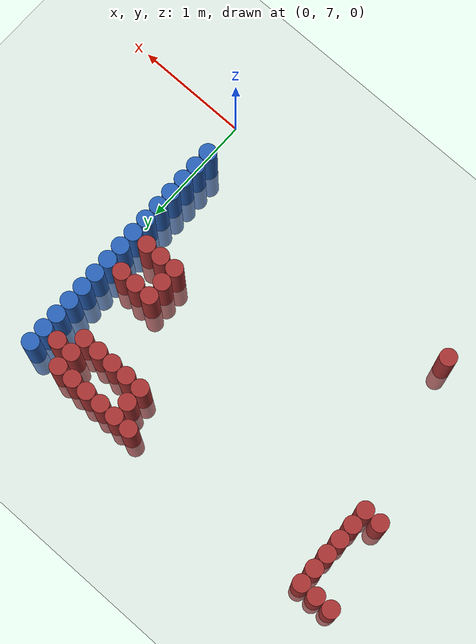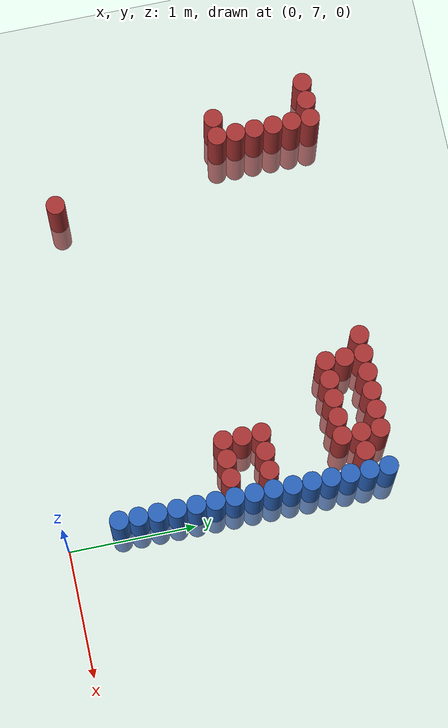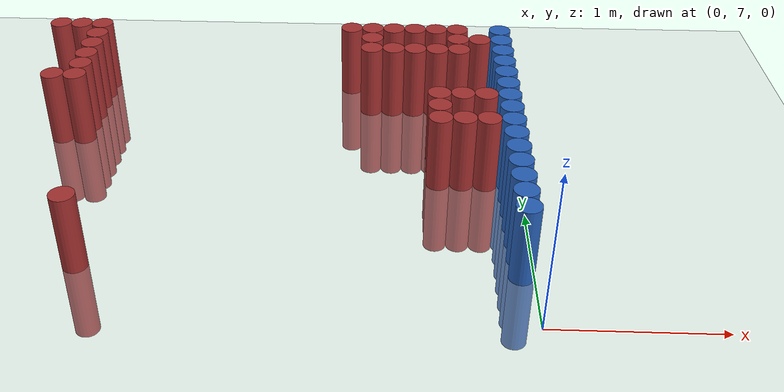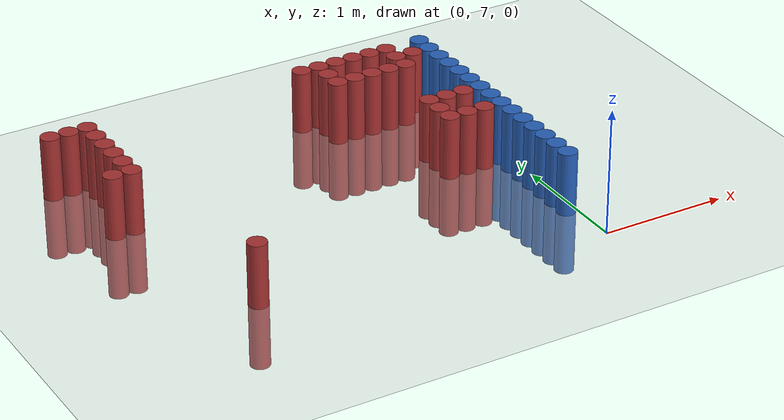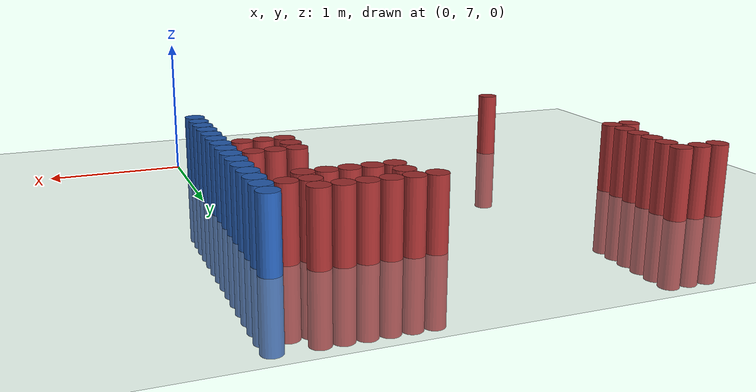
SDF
<sdf version="1.6">
 <world name="default">
  <model name="ground_plane">
   <static>1</static>
   <link name="link">
    <collision name="collision">
     <geometry><plane><normal>0 0 1</normal><size>100 100</size></plane></geometry>
     <surface><friction><ode><mu>100</mu><mu2>50</mu2></ode></friction></surface>
    </collision>
    <visual name="visual">
     <cast_shadows>0</cast_shadows>
     <geometry><plane><normal>0 0 1</normal><size>100 100</size></plane></geometry>
     <material>
      <script><uri>file://media/materials/scripts/gazebo.material</uri><name>Gazebo/Grey</name></script>
     </material>
    </visual>
   </link>
  </model>
  <model name="unit_cylinder_161">
   <static>1</static>
   <pose>-3.225000 9.525000 0.000000 0.000000 0.000000 0.000000</pose>
   <link name="link">
    <inertial>
     <mass>1</mass>
     <inertia><ixx>0.145833</ixx><ixy>0</ixy><ixz>0</ixz><iyy>0.145833</iyy><iyz>0</iyz><izz>0.125</izz></inertia>
    </inertial>
    <collision name="collision">
     <geometry><cylinder><radius>0.075000</radius><length>1</length></cylinder></geometry>
    </collision>
    <visual name="visual">
     <geometry><cylinder><radius>0.075000</radius><length>1</length></cylinder></geometry>
     <material>
      <ambient>0.648000 0.192000 0.192000 1</ambient>
      <diffuse>0.648000 0.192000 0.192000 1</diffuse>
     </material>
     <material>
      <script><name>Gazebo/Grey</name><uri>file://media/materials/scripts/gazebo.material</uri></script>
     </material>
    </visual>
   </link>
  </model>
  <model name="unit_cylinder_164">
   <static>1</static>
   <pose>-3.075000 8.775000 0.000000 0.000000 0.000000 0.000000</pose>
   <link name="link">
    <inertial>
     <mass>1</mass>
     <inertia><ixx>0.145833</ixx><ixy>0</ixy><ixz>0</ixz><iyy>0.145833</iyy><iyz>0</iyz><izz>0.125</izz></inertia>
    </inertial>
    <collision name="collision">
     <geometry><cylinder><radius>0.075000</radius><length>1</length></cylinder></geometry>
    </collision>
    <visual name="visual">
     <geometry><cylinder><radius>0.075000</radius><length>1</length></cylinder></geometry>
     <material>
      <ambient>0.648000 0.192000 0.192000 1</ambient>
      <diffuse>0.648000 0.192000 0.192000 1</diffuse>
     </material>
     <material>
      <script><name>Gazebo/Grey</name><uri>file://media/materials/scripts/gazebo.material</uri></script>
     </material>
    </visual>
   </link>
  </model>
  <model name="unit_cylinder_165">
   <static>1</static>
   <pose>-3.075000 9.525000 0.000000 0.000000 0.000000 0.000000</pose>
   <link name="link">
    <inertial>
     <mass>1</mass>
     <inertia><ixx>0.145833</ixx><ixy>0</ixy><ixz>0</ixz><iyy>0.145833</iyy><iyz>0</iyz><izz>0.125</izz></inertia>
    </inertial>
    <collision name="collision">
     <geometry><cylinder><radius>0.075000</radius><length>1</length></cylinder></geometry>
    </collision>
    <visual name="visual">
     <geometry><cylinder><radius>0.075000</radius><length>1</length></cylinder></geometry>
     <material>
      <ambient>0.648000 0.192000 0.192000 1</ambient>
      <diffuse>0.648000 0.192000 0.192000 1</diffuse>
     </material>
     <material>
      <script><name>Gazebo/Grey</name><uri>file://media/materials/scripts/gazebo.material</uri></script>
     </material>
    </visual>
   </link>
  </model>
  <model name="unit_cylinder_179">
   <static>1</static>
   <pose>-2.925000 8.775000 0.000000 0.000000 0.000000 0.000000</pose>
   <link name="link">
    <inertial>
     <mass>1</mass>
     <inertia><ixx>0.145833</ixx><ixy>0</ixy><ixz>0</ixz><iyy>0.145833</iyy><iyz>0</iyz><izz>0.125</izz></inertia>
    </inertial>
    <collision name="collision">
     <geometry><cylinder><radius>0.075000</radius><length>1</length></cylinder></geometry>
    </collision>
    <visual name="visual">
     <geometry><cylinder><radius>0.075000</radius><length>1</length></cylinder></geometry>
     <material>
      <ambient>0.648000 0.192000 0.192000 1</ambient>
      <diffuse>0.648000 0.192000 0.192000 1</diffuse>
     </material>
     <material>
      <script><name>Gazebo/Grey</name><uri>file://media/materials/scripts/gazebo.material</uri></script>
     </material>
    </visual>
   </link>
  </model>
  <model name="unit_cylinder_180">
   <static>1</static>
   <pose>-2.925000 8.925000 0.000000 0.000000 0.000000 0.000000</pose>
   <link name="link">
    <inertial>
     <mass>1</mass>
     <inertia><ixx>0.145833</ixx><ixy>0</ixy><ixz>0</ixz><iyy>0.145833</iyy><iyz>0</iyz><izz>0.125</izz></inertia>
    </inertial>
    <collision name="collision">
     <geometry><cylinder><radius>0.075000</radius><length>1</length></cylinder></geometry>
    </collision>
    <visual name="visual">
     <geometry><cylinder><radius>0.075000</radius><length>1</length></cylinder></geometry>
     <material>
      <ambient>0.648000 0.192000 0.192000 1</ambient>
      <diffuse>0.648000 0.192000 0.192000 1</diffuse>
     </material>
     <material>
      <script><name>Gazebo/Grey</name><uri>file://media/materials/scripts/gazebo.material</uri></script>
     </material>
    </visual>
   </link>
  </model>
  <model name="unit_cylinder_181">
   <static>1</static>
   <pose>-2.925000 9.075000 0.000000 0.000000 0.000000 0.000000</pose>
   <link name="link">
    <inertial>
     <mass>1</mass>
     <inertia><ixx>0.145833</ixx><ixy>0</ixy><ixz>0</ixz><iyy>0.145833</iyy><iyz>0</iyz><izz>0.125</izz></inertia>
    </inertial>
    <collision name="collision">
     <geometry><cylinder><radius>0.075000</radius><length>1</length></cylinder></geometry>
    </collision>
    <visual name="visual">
     <geometry><cylinder><radius>0.075000</radius><length>1</length></cylinder></geometry>
     <material>
      <ambient>0.648000 0.192000 0.192000 1</ambient>
      <diffuse>0.648000 0.192000 0.192000 1</diffuse>
     </material>
     <material>
      <script><name>Gazebo/Grey</name><uri>file://media/materials/scripts/gazebo.material</uri></script>
     </material>
    </visual>
   </link>
  </model>
  <model name="unit_cylinder_182">
   <static>1</static>
   <pose>-2.925000 9.225000 0.000000 0.000000 0.000000 0.000000</pose>
   <link name="link">
    <inertial>
     <mass>1</mass>
     <inertia><ixx>0.145833</ixx><ixy>0</ixy><ixz>0</ixz><iyy>0.145833</iyy><iyz>0</iyz><izz>0.125</izz></inertia>
    </inertial>
    <collision name="collision">
     <geometry><cylinder><radius>0.075000</radius><length>1</length></cylinder></geometry>
    </collision>
    <visual name="visual">
     <geometry><cylinder><radius>0.075000</radius><length>1</length></cylinder></geometry>
     <material>
      <ambient>0.648000 0.192000 0.192000 1</ambient>
      <diffuse>0.648000 0.192000 0.192000 1</diffuse>
     </material>
     <material>
      <script><name>Gazebo/Grey</name><uri>file://media/materials/scripts/gazebo.material</uri></script>
     </material>
    </visual>
   </link>
  </model>
  <model name="unit_cylinder_183">
   <static>1</static>
   <pose>-2.925000 9.375000 0.000000 0.000000 0.000000 0.000000</pose>
   <link name="link">
    <inertial>
     <mass>1</mass>
     <inertia><ixx>0.145833</ixx><ixy>0</ixy><ixz>0</ixz><iyy>0.145833</iyy><iyz>0</iyz><izz>0.125</izz></inertia>
    </inertial>
    <collision name="collision">
     <geometry><cylinder><radius>0.075000</radius><length>1</length></cylinder></geometry>
    </collision>
    <visual name="visual">
     <geometry><cylinder><radius>0.075000</radius><length>1</length></cylinder></geometry>
     <material>
      <ambient>0.648000 0.192000 0.192000 1</ambient>
      <diffuse>0.648000 0.192000 0.192000 1</diffuse>
     </material>
     <material>
      <script><name>Gazebo/Grey</name><uri>file://media/materials/scripts/gazebo.material</uri></script>
     </material>
    </visual>
   </link>
  </model>
  <model name="unit_cylinder_184">
   <static>1</static>
   <pose>-2.925000 9.525000 0.000000 0.000000 0.000000 0.000000</pose>
   <link name="link">
    <inertial>
     <mass>1</mass>
     <inertia><ixx>0.145833</ixx><ixy>0</ixy><ixz>0</ixz><iyy>0.145833</iyy><iyz>0</iyz><izz>0.125</izz></inertia>
    </inertial>
    <collision name="collision">
     <geometry><cylinder><radius>0.075000</radius><length>1</length></cylinder></geometry>
    </collision>
    <visual name="visual">
     <geometry><cylinder><radius>0.075000</radius><length>1</length></cylinder></geometry>
     <material>
      <ambient>0.648000 0.192000 0.192000 1</ambient>
      <diffuse>0.648000 0.192000 0.192000 1</diffuse>
     </material>
     <material>
      <script><name>Gazebo/Grey</name><uri>file://media/materials/scripts/gazebo.material</uri></script>
     </material>
    </visual>
   </link>
  </model>
  <model name="unit_cylinder_197">
   <static>1</static>
   <pose>-2.625000 7.425000 0.000000 0.000000 0.000000 0.000000</pose>
   <link name="link">
    <inertial>
     <mass>1</mass>
     <inertia><ixx>0.145833</ixx><ixy>0</ixy><ixz>0</ixz><iyy>0.145833</iyy><iyz>0</iyz><izz>0.125</izz></inertia>
    </inertial>
    <collision name="collision">
     <geometry><cylinder><radius>0.075000</radius><length>1</length></cylinder></geometry>
    </collision>
    <visual name="visual">
     <geometry><cylinder><radius>0.075000</radius><length>1</length></cylinder></geometry>
     <material>
      <ambient>0.648000 0.192000 0.192000 1</ambient>
      <diffuse>0.648000 0.192000 0.192000 1</diffuse>
     </material>
     <material>
      <script><name>Gazebo/Grey</name><uri>file://media/materials/scripts/gazebo.material</uri></script>
     </material>
    </visual>
   </link>
  </model>
  <model name="unit_cylinder_204">
   <static>1</static>
   <pose>-1.125000 9.525000 0.000000 0.000000 0.000000 0.000000</pose>
   <link name="link">
    <inertial>
     <mass>1</mass>
     <inertia><ixx>0.145833</ixx><ixy>0</ixy><ixz>0</ixz><iyy>0.145833</iyy><iyz>0</iyz><izz>0.125</izz></inertia>
    </inertial>
    <collision name="collision">
     <geometry><cylinder><radius>0.075000</radius><length>1</length></cylinder></geometry>
    </collision>
    <visual name="visual">
     <geometry><cylinder><radius>0.075000</radius><length>1</length></cylinder></geometry>
     <material>
      <ambient>0.648000 0.192000 0.192000 1</ambient>
      <diffuse>0.648000 0.192000 0.192000 1</diffuse>
     </material>
     <material>
      <script><name>Gazebo/Grey</name><uri>file://media/materials/scripts/gazebo.material</uri></script>
     </material>
    </visual>
   </link>
  </model>
  <model name="unit_cylinder_205">
   <static>1</static>
   <pose>-0.975000 9.225000 0.000000 0.000000 0.000000 0.000000</pose>
   <link name="link">
    <inertial>
     <mass>1</mass>
     <inertia><ixx>0.145833</ixx><ixy>0</ixy><ixz>0</ixz><iyy>0.145833</iyy><iyz>0</iyz><izz>0.125</izz></inertia>
    </inertial>
    <collision name="collision">
     <geometry><cylinder><radius>0.075000</radius><length>1</length></cylinder></geometry>
    </collision>
    <visual name="visual">
     <geometry><cylinder><radius>0.075000</radius><length>1</length></cylinder></geometry>
     <material>
      <ambient>0.648000 0.192000 0.192000 1</ambient>
      <diffuse>0.648000 0.192000 0.192000 1</diffuse>
     </material>
     <material>
      <script><name>Gazebo/Grey</name><uri>file://media/materials/scripts/gazebo.material</uri></script>
     </material>
    </visual>
   </link>
  </model>
  <model name="unit_cylinder_206">
   <static>1</static>
   <pose>-0.975000 9.375000 0.000000 0.000000 0.000000 0.000000</pose>
   <link name="link">
    <inertial>
     <mass>1</mass>
     <inertia><ixx>0.145833</ixx><ixy>0</ixy><ixz>0</ixz><iyy>0.145833</iyy><iyz>0</iyz><izz>0.125</izz></inertia>
    </inertial>
    <collision name="collision">
     <geometry><cylinder><radius>0.075000</radius><length>1</length></cylinder></geometry>
    </collision>
    <visual name="visual">
     <geometry><cylinder><radius>0.075000</radius><length>1</length></cylinder></geometry>
     <material>
      <ambient>0.648000 0.192000 0.192000 1</ambient>
      <diffuse>0.648000 0.192000 0.192000 1</diffuse>
     </material>
     <material>
      <script><name>Gazebo/Grey</name><uri>file://media/materials/scripts/gazebo.material</uri></script>
     </material>
    </visual>
   </link>
  </model>
  <model name="unit_cylinder_207">
   <static>1</static>
   <pose>-0.975000 9.525000 0.000000 0.000000 0.000000 0.000000</pose>
   <link name="link">
    <inertial>
     <mass>1</mass>
     <inertia><ixx>0.145833</ixx><ixy>0</ixy><ixz>0</ixz><iyy>0.145833</iyy><iyz>0</iyz><izz>0.125</izz></inertia>
    </inertial>
    <collision name="collision">
     <geometry><cylinder><radius>0.075000</radius><length>1</length></cylinder></geometry>
    </collision>
    <visual name="visual">
     <geometry><cylinder><radius>0.075000</radius><length>1</length></cylinder></geometry>
     <material>
      <ambient>0.648000 0.192000 0.192000 1</ambient>
      <diffuse>0.648000 0.192000 0.192000 1</diffuse>
     </material>
     <material>
      <script><name>Gazebo/Grey</name><uri>file://media/materials/scripts/gazebo.material</uri></script>
     </material>
    </visual>
   </link>
  </model>
  <model name="unit_cylinder_214">
   <static>1</static>
   <pose>-0.825000 9.225000 0.000000 0.000000 0.000000 0.000000</pose>
   <link name="link">
    <inertial>
     <mass>1</mass>
     <inertia><ixx>0.145833</ixx><ixy>0</ixy><ixz>0</ixz><iyy>0.145833</iyy><iyz>0</iyz><izz>0.125</izz></inertia>
    </inertial>
    <collision name="collision">
     <geometry><cylinder><radius>0.075000</radius><length>1</length></cylinder></geometry>
    </collision>
    <visual name="visual">
     <geometry><cylinder><radius>0.075000</radius><length>1</length></cylinder></geometry>
     <material>
      <ambient>0.648000 0.192000 0.192000 1</ambient>
      <diffuse>0.648000 0.192000 0.192000 1</diffuse>
     </material>
     <material>
      <script><name>Gazebo/Grey</name><uri>file://media/materials/scripts/gazebo.material</uri></script>
     </material>
    </visual>
   </link>
  </model>
  <model name="unit_cylinder_215">
   <static>1</static>
   <pose>-0.825000 9.525000 0.000000 0.000000 0.000000 0.000000</pose>
   <link name="link">
    <inertial>
     <mass>1</mass>
     <inertia><ixx>0.145833</ixx><ixy>0</ixy><ixz>0</ixz><iyy>0.145833</iyy><iyz>0</iyz><izz>0.125</izz></inertia>
    </inertial>
    <collision name="collision">
     <geometry><cylinder><radius>0.075000</radius><length>1</length></cylinder></geometry>
    </collision>
    <visual name="visual">
     <geometry><cylinder><radius>0.075000</radius><length>1</length></cylinder></geometry>
     <material>
      <ambient>0.648000 0.192000 0.192000 1</ambient>
      <diffuse>0.648000 0.192000 0.192000 1</diffuse>
     </material>
     <material>
      <script><name>Gazebo/Grey</name><uri>file://media/materials/scripts/gazebo.material</uri></script>
     </material>
    </visual>
   </link>
  </model>
  <model name="unit_cylinder_220">
   <static>1</static>
   <pose>-0.675000 9.225000 0.000000 0.000000 0.000000 0.000000</pose>
   <link name="link">
    <inertial>
     <mass>1</mass>
     <inertia><ixx>0.145833</ixx><ixy>0</ixy><ixz>0</ixz><iyy>0.145833</iyy><iyz>0</iyz><izz>0.125</izz></inertia>
    </inertial>
    <collision name="collision">
     <geometry><cylinder><radius>0.075000</radius><length>1</length></cylinder></geometry>
    </collision>
    <visual name="visual">
     <geometry><cylinder><radius>0.075000</radius><length>1</length></cylinder></geometry>
     <material>
      <ambient>0.648000 0.192000 0.192000 1</ambient>
      <diffuse>0.648000 0.192000 0.192000 1</diffuse>
     </material>
     <material>
      <script><name>Gazebo/Grey</name><uri>file://media/materials/scripts/gazebo.material</uri></script>
     </material>
    </visual>
   </link>
  </model>
  <model name="unit_cylinder_221">
   <static>1</static>
   <pose>-0.675000 9.525000 0.000000 0.000000 0.000000 0.000000</pose>
   <link name="link">
    <inertial>
     <mass>1</mass>
     <inertia><ixx>0.145833</ixx><ixy>0</ixy><ixz>0</ixz><iyy>0.145833</iyy><iyz>0</iyz><izz>0.125</izz></inertia>
    </inertial>
    <collision name="collision">
     <geometry><cylinder><radius>0.075000</radius><length>1</length></cylinder></geometry>
    </collision>
    <visual name="visual">
     <geometry><cylinder><radius>0.075000</radius><length>1</length></cylinder></geometry>
     <material>
      <ambient>0.648000 0.192000 0.192000 1</ambient>
      <diffuse>0.648000 0.192000 0.192000 1</diffuse>
     </material>
     <material>
      <script><name>Gazebo/Grey</name><uri>file://media/materials/scripts/gazebo.material</uri></script>
     </material>
    </visual>
   </link>
  </model>
  <model name="unit_cylinder_226">
   <static>1</static>
   <pose>-0.525000 8.325000 0.000000 0.000000 0.000000 0.000000</pose>
   <link name="link">
    <inertial>
     <mass>1</mass>
     <inertia><ixx>0.145833</ixx><ixy>0</ixy><ixz>0</ixz><iyy>0.145833</iyy><iyz>0</iyz><izz>0.125</izz></inertia>
    </inertial>
    <collision name="collision">
     <geometry><cylinder><radius>0.075000</radius><length>1</length></cylinder></geometry>
    </collision>
    <visual name="visual">
     <geometry><cylinder><radius>0.075000</radius><length>1</length></cylinder></geometry>
     <material>
      <ambient>0.648000 0.192000 0.192000 1</ambient>
      <diffuse>0.648000 0.192000 0.192000 1</diffuse>
     </material>
     <material>
      <script><name>Gazebo/Grey</name><uri>file://media/materials/scripts/gazebo.material</uri></script>
     </material>
    </visual>
   </link>
  </model>
  <model name="unit_cylinder_227">
   <static>1</static>
   <pose>-0.525000 8.475000 0.000000 0.000000 0.000000 0.000000</pose>
   <link name="link">
    <inertial>
     <mass>1</mass>
     <inertia><ixx>0.145833</ixx><ixy>0</ixy><ixz>0</ixz><iyy>0.145833</iyy><iyz>0</iyz><izz>0.125</izz></inertia>
    </inertial>
    <collision name="collision">
     <geometry><cylinder><radius>0.075000</radius><length>1</length></cylinder></geometry>
    </collision>
    <visual name="visual">
     <geometry><cylinder><radius>0.075000</radius><length>1</length></cylinder></geometry>
     <material>
      <ambient>0.648000 0.192000 0.192000 1</ambient>
      <diffuse>0.648000 0.192000 0.192000 1</diffuse>
     </material>
     <material>
      <script><name>Gazebo/Grey</name><uri>file://media/materials/scripts/gazebo.material</uri></script>
     </material>
    </visual>
   </link>
  </model>
  <model name="unit_cylinder_228">
   <static>1</static>
   <pose>-0.525000 8.625000 0.000000 0.000000 0.000000 0.000000</pose>
   <link name="link">
    <inertial>
     <mass>1</mass>
     <inertia><ixx>0.145833</ixx><ixy>0</ixy><ixz>0</ixz><iyy>0.145833</iyy><iyz>0</iyz><izz>0.125</izz></inertia>
    </inertial>
    <collision name="collision">
     <geometry><cylinder><radius>0.075000</radius><length>1</length></cylinder></geometry>
    </collision>
    <visual name="visual">
     <geometry><cylinder><radius>0.075000</radius><length>1</length></cylinder></geometry>
     <material>
      <ambient>0.648000 0.192000 0.192000 1</ambient>
      <diffuse>0.648000 0.192000 0.192000 1</diffuse>
     </material>
     <material>
      <script><name>Gazebo/Grey</name><uri>file://media/materials/scripts/gazebo.material</uri></script>
     </material>
    </visual>
   </link>
  </model>
  <model name="unit_cylinder_229">
   <static>1</static>
   <pose>-0.525000 9.225000 0.000000 0.000000 0.000000 0.000000</pose>
   <link name="link">
    <inertial>
     <mass>1</mass>
     <inertia><ixx>0.145833</ixx><ixy>0</ixy><ixz>0</ixz><iyy>0.145833</iyy><iyz>0</iyz><izz>0.125</izz></inertia>
    </inertial>
    <collision name="collision">
     <geometry><cylinder><radius>0.075000</radius><length>1</length></cylinder></geometry>
    </collision>
    <visual name="visual">
     <geometry><cylinder><radius>0.075000</radius><length>1</length></cylinder></geometry>
     <material>
      <ambient>0.648000 0.192000 0.192000 1</ambient>
      <diffuse>0.648000 0.192000 0.192000 1</diffuse>
     </material>
     <material>
      <script><name>Gazebo/Grey</name><uri>file://media/materials/scripts/gazebo.material</uri></script>
     </material>
    </visual>
   </link>
  </model>
  <model name="unit_cylinder_230">
   <static>1</static>
   <pose>-0.525000 9.525000 0.000000 0.000000 0.000000 0.000000</pose>
   <link name="link">
    <inertial>
     <mass>1</mass>
     <inertia><ixx>0.145833</ixx><ixy>0</ixy><ixz>0</ixz><iyy>0.145833</iyy><iyz>0</iyz><izz>0.125</izz></inertia>
    </inertial>
    <collision name="collision">
     <geometry><cylinder><radius>0.075000</radius><length>1</length></cylinder></geometry>
    </collision>
    <visual name="visual">
     <geometry><cylinder><radius>0.075000</radius><length>1</length></cylinder></geometry>
     <material>
      <ambient>0.648000 0.192000 0.192000 1</ambient>
      <diffuse>0.648000 0.192000 0.192000 1</diffuse>
     </material>
     <material>
      <script><name>Gazebo/Grey</name><uri>file://media/materials/scripts/gazebo.material</uri></script>
     </material>
    </visual>
   </link>
  </model>
  <model name="unit_cylinder_234">
   <static>1</static>
   <pose>-0.375000 8.325000 0.000000 0.000000 0.000000 0.000000</pose>
   <link name="link">
    <inertial>
     <mass>1</mass>
     <inertia><ixx>0.145833</ixx><ixy>0</ixy><ixz>0</ixz><iyy>0.145833</iyy><iyz>0</iyz><izz>0.125</izz></inertia>
    </inertial>
    <collision name="collision">
     <geometry><cylinder><radius>0.075000</radius><length>1</length></cylinder></geometry>
    </collision>
    <visual name="visual">
     <geometry><cylinder><radius>0.075000</radius><length>1</length></cylinder></geometry>
     <material>
      <ambient>0.648000 0.192000 0.192000 1</ambient>
      <diffuse>0.648000 0.192000 0.192000 1</diffuse>
     </material>
     <material>
      <script><name>Gazebo/Grey</name><uri>file://media/materials/scripts/gazebo.material</uri></script>
     </material>
    </visual>
   </link>
  </model>
  <model name="unit_cylinder_235">
   <static>1</static>
   <pose>-0.375000 8.625000 0.000000 0.000000 0.000000 0.000000</pose>
   <link name="link">
    <inertial>
     <mass>1</mass>
     <inertia><ixx>0.145833</ixx><ixy>0</ixy><ixz>0</ixz><iyy>0.145833</iyy><iyz>0</iyz><izz>0.125</izz></inertia>
    </inertial>
    <collision name="collision">
     <geometry><cylinder><radius>0.075000</radius><length>1</length></cylinder></geometry>
    </collision>
    <visual name="visual">
     <geometry><cylinder><radius>0.075000</radius><length>1</length></cylinder></geometry>
     <material>
      <ambient>0.648000 0.192000 0.192000 1</ambient>
      <diffuse>0.648000 0.192000 0.192000 1</diffuse>
     </material>
     <material>
      <script><name>Gazebo/Grey</name><uri>file://media/materials/scripts/gazebo.material</uri></script>
     </material>
    </visual>
   </link>
  </model>
  <model name="unit_cylinder_236">
   <static>1</static>
   <pose>-0.375000 9.225000 0.000000 0.000000 0.000000 0.000000</pose>
   <link name="link">
    <inertial>
     <mass>1</mass>
     <inertia><ixx>0.145833</ixx><ixy>0</ixy><ixz>0</ixz><iyy>0.145833</iyy><iyz>0</iyz><izz>0.125</izz></inertia>
    </inertial>
    <collision name="collision">
     <geometry><cylinder><radius>0.075000</radius><length>1</length></cylinder></geometry>
    </collision>
    <visual name="visual">
     <geometry><cylinder><radius>0.075000</radius><length>1</length></cylinder></geometry>
     <material>
      <ambient>0.648000 0.192000 0.192000 1</ambient>
      <diffuse>0.648000 0.192000 0.192000 1</diffuse>
     </material>
     <material>
      <script><name>Gazebo/Grey</name><uri>file://media/materials/scripts/gazebo.material</uri></script>
     </material>
    </visual>
   </link>
  </model>
  <model name="unit_cylinder_237">
   <static>1</static>
   <pose>-0.375000 9.375000 0.000000 0.000000 0.000000 0.000000</pose>
   <link name="link">
    <inertial>
     <mass>1</mass>
     <inertia><ixx>0.145833</ixx><ixy>0</ixy><ixz>0</ixz><iyy>0.145833</iyy><iyz>0</iyz><izz>0.125</izz></inertia>
    </inertial>
    <collision name="collision">
     <geometry><cylinder><radius>0.075000</radius><length>1</length></cylinder></geometry>
    </collision>
    <visual name="visual">
     <geometry><cylinder><radius>0.075000</radius><length>1</length></cylinder></geometry>
     <material>
      <ambient>0.648000 0.192000 0.192000 1</ambient>
      <diffuse>0.648000 0.192000 0.192000 1</diffuse>
     </material>
     <material>
      <script><name>Gazebo/Grey</name><uri>file://media/materials/scripts/gazebo.material</uri></script>
     </material>
    </visual>
   </link>
  </model>
  <model name="unit_cylinder_238">
   <static>1</static>
   <pose>-0.375000 9.525000 0.000000 0.000000 0.000000 0.000000</pose>
   <link name="link">
    <inertial>
     <mass>1</mass>
     <inertia><ixx>0.145833</ixx><ixy>0</ixy><ixz>0</ixz><iyy>0.145833</iyy><iyz>0</iyz><izz>0.125</izz></inertia>
    </inertial>
    <collision name="collision">
     <geometry><cylinder><radius>0.075000</radius><length>1</length></cylinder></geometry>
    </collision>
    <visual name="visual">
     <geometry><cylinder><radius>0.075000</radius><length>1</length></cylinder></geometry>
     <material>
      <ambient>0.648000 0.192000 0.192000 1</ambient>
      <diffuse>0.648000 0.192000 0.192000 1</diffuse>
     </material>
     <material>
      <script><name>Gazebo/Grey</name><uri>file://media/materials/scripts/gazebo.material</uri></script>
     </material>
    </visual>
   </link>
  </model>
  <model name="unit_cylinder_241">
   <static>1</static>
   <pose>-0.225000 8.325000 0.000000 0.000000 0.000000 0.000000</pose>
   <link name="link">
    <inertial>
     <mass>1</mass>
     <inertia><ixx>0.145833</ixx><ixy>0</ixy><ixz>0</ixz><iyy>0.145833</iyy><iyz>0</iyz><izz>0.125</izz></inertia>
    </inertial>
    <collision name="collision">
     <geometry><cylinder><radius>0.075000</radius><length>1</length></cylinder></geometry>
    </collision>
    <visual name="visual">
     <geometry><cylinder><radius>0.075000</radius><length>1</length></cylinder></geometry>
     <material>
      <ambient>0.648000 0.192000 0.192000 1</ambient>
      <diffuse>0.648000 0.192000 0.192000 1</diffuse>
     </material>
     <material>
      <script><name>Gazebo/Grey</name><uri>file://media/materials/scripts/gazebo.material</uri></script>
     </material>
    </visual>
   </link>
  </model>
  <model name="unit_cylinder_242">
   <static>1</static>
   <pose>-0.225000 8.625000 0.000000 0.000000 0.000000 0.000000</pose>
   <link name="link">
    <inertial>
     <mass>1</mass>
     <inertia><ixx>0.145833</ixx><ixy>0</ixy><ixz>0</ixz><iyy>0.145833</iyy><iyz>0</iyz><izz>0.125</izz></inertia>
    </inertial>
    <collision name="collision">
     <geometry><cylinder><radius>0.075000</radius><length>1</length></cylinder></geometry>
    </collision>
    <visual name="visual">
     <geometry><cylinder><radius>0.075000</radius><length>1</length></cylinder></geometry>
     <material>
      <ambient>0.648000 0.192000 0.192000 1</ambient>
      <diffuse>0.648000 0.192000 0.192000 1</diffuse>
     </material>
     <material>
      <script><name>Gazebo/Grey</name><uri>file://media/materials/scripts/gazebo.material</uri></script>
     </material>
    </visual>
   </link>
  </model>
  <model name="unit_cylinder_243">
   <static>1</static>
   <pose>-0.225000 9.375000 0.000000 0.000000 0.000000 0.000000</pose>
   <link name="link">
    <inertial>
     <mass>1</mass>
     <inertia><ixx>0.145833</ixx><ixy>0</ixy><ixz>0</ixz><iyy>0.145833</iyy><iyz>0</iyz><izz>0.125</izz></inertia>
    </inertial>
    <collision name="collision">
     <geometry><cylinder><radius>0.075000</radius><length>1</length></cylinder></geometry>
    </collision>
    <visual name="visual">
     <geometry><cylinder><radius>0.075000</radius><length>1</length></cylinder></geometry>
     <material>
      <ambient>0.648000 0.192000 0.192000 1</ambient>
      <diffuse>0.648000 0.192000 0.192000 1</diffuse>
     </material>
     <material>
      <script><name>Gazebo/Grey</name><uri>file://media/materials/scripts/gazebo.material</uri></script>
     </material>
    </visual>
   </link>
  </model>
  <model name="unit_cylinder_259">
   <static>1</static>
   <pose>-0.075000 7.425000 0.000000 0.000000 0.000000 0.000000</pose>
   <link name="link">
    <inertial>
     <mass>1</mass>
     <inertia><ixx>0.145833</ixx><ixy>0</ixy><ixz>0</ixz><iyy>0.145833</iyy><iyz>0</iyz><izz>0.125</izz></inertia>
    </inertial>
    <collision name="collision">
     <geometry><cylinder><radius>0.075000</radius><length>1</length></cylinder></geometry>
    </collision>
    <visual name="visual">
     <geometry><cylinder><radius>0.075000</radius><length>1</length></cylinder></geometry>
     <material>
      <ambient>0.152000 0.379000 0.720000 1</ambient>
      <diffuse>0.152000 0.379000 0.720000 1</diffuse>
     </material>
     <material>
      <script><name>Gazebo/Grey</name><uri>file://media/materials/scripts/gazebo.material</uri></script>
     </material>
    </visual>
   </link>
  </model>
  <model name="unit_cylinder_260">
   <static>1</static>
   <pose>-0.075000 7.575000 0.000000 0.000000 0.000000 0.000000</pose>
   <link name="link">
    <inertial>
     <mass>1</mass>
     <inertia><ixx>0.145833</ixx><ixy>0</ixy><ixz>0</ixz><iyy>0.145833</iyy><iyz>0</iyz><izz>0.125</izz></inertia>
    </inertial>
    <collision name="collision">
     <geometry><cylinder><radius>0.075000</radius><length>1</length></cylinder></geometry>
    </collision>
    <visual name="visual">
     <geometry><cylinder><radius>0.075000</radius><length>1</length></cylinder></geometry>
     <material>
      <ambient>0.152000 0.379000 0.720000 1</ambient>
      <diffuse>0.152000 0.379000 0.720000 1</diffuse>
     </material>
     <material>
      <script><name>Gazebo/Grey</name><uri>file://media/materials/scripts/gazebo.material</uri></script>
     </material>
    </visual>
   </link>
  </model>
  <model name="unit_cylinder_261">
   <static>1</static>
   <pose>-0.075000 7.725000 0.000000 0.000000 0.000000 0.000000</pose>
   <link name="link">
    <inertial>
     <mass>1</mass>
     <inertia><ixx>0.145833</ixx><ixy>0</ixy><ixz>0</ixz><iyy>0.145833</iyy><iyz>0</iyz><izz>0.125</izz></inertia>
    </inertial>
    <collision name="collision">
     <geometry><cylinder><radius>0.075000</radius><length>1</length></cylinder></geometry>
    </collision>
    <visual name="visual">
     <geometry><cylinder><radius>0.075000</radius><length>1</length></cylinder></geometry>
     <material>
      <ambient>0.152000 0.379000 0.720000 1</ambient>
      <diffuse>0.152000 0.379000 0.720000 1</diffuse>
     </material>
     <material>
      <script><name>Gazebo/Grey</name><uri>file://media/materials/scripts/gazebo.material</uri></script>
     </material>
    </visual>
   </link>
  </model>
  <model name="unit_cylinder_262">
   <static>1</static>
   <pose>-0.075000 7.875000 0.000000 0.000000 0.000000 0.000000</pose>
   <link name="link">
    <inertial>
     <mass>1</mass>
     <inertia><ixx>0.145833</ixx><ixy>0</ixy><ixz>0</ixz><iyy>0.145833</iyy><iyz>0</iyz><izz>0.125</izz></inertia>
    </inertial>
    <collision name="collision">
     <geometry><cylinder><radius>0.075000</radius><length>1</length></cylinder></geometry>
    </collision>
    <visual name="visual">
     <geometry><cylinder><radius>0.075000</radius><length>1</length></cylinder></geometry>
     <material>
      <ambient>0.152000 0.379000 0.720000 1</ambient>
      <diffuse>0.152000 0.379000 0.720000 1</diffuse>
     </material>
     <material>
      <script><name>Gazebo/Grey</name><uri>file://media/materials/scripts/gazebo.material</uri></script>
     </material>
    </visual>
   </link>
  </model>
  <model name="unit_cylinder_263">
   <static>1</static>
   <pose>-0.075000 8.025000 0.000000 0.000000 0.000000 0.000000</pose>
   <link name="link">
    <inertial>
     <mass>1</mass>
     <inertia><ixx>0.145833</ixx><ixy>0</ixy><ixz>0</ixz><iyy>0.145833</iyy><iyz>0</iyz><izz>0.125</izz></inertia>
    </inertial>
    <collision name="collision">
     <geometry><cylinder><radius>0.075000</radius><length>1</length></cylinder></geometry>
    </collision>
    <visual name="visual">
     <geometry><cylinder><radius>0.075000</radius><length>1</length></cylinder></geometry>
     <material>
      <ambient>0.152000 0.379000 0.720000 1</ambient>
      <diffuse>0.152000 0.379000 0.720000 1</diffuse>
     </material>
     <material>
      <script><name>Gazebo/Grey</name><uri>file://media/materials/scripts/gazebo.material</uri></script>
     </material>
    </visual>
   </link>
  </model>
  <model name="unit_cylinder_264">
   <static>1</static>
   <pose>-0.075000 8.175000 0.000000 0.000000 0.000000 0.000000</pose>
   <link name="link">
    <inertial>
     <mass>1</mass>
     <inertia><ixx>0.145833</ixx><ixy>0</ixy><ixz>0</ixz><iyy>0.145833</iyy><iyz>0</iyz><izz>0.125</izz></inertia>
    </inertial>
    <collision name="collision">
     <geometry><cylinder><radius>0.075000</radius><length>1</length></cylinder></geometry>
    </collision>
    <visual name="visual">
     <geometry><cylinder><radius>0.075000</radius><length>1</length></cylinder></geometry>
     <material>
      <ambient>0.152000 0.379000 0.720000 1</ambient>
      <diffuse>0.152000 0.379000 0.720000 1</diffuse>
     </material>
     <material>
      <script><name>Gazebo/Grey</name><uri>file://media/materials/scripts/gazebo.material</uri></script>
     </material>
    </visual>
   </link>
  </model>
  <model name="unit_cylinder_265">
   <static>1</static>
   <pose>-0.075000 8.325000 0.000000 0.000000 0.000000 0.000000</pose>
   <link name="link">
    <inertial>
     <mass>1</mass>
     <inertia><ixx>0.145833</ixx><ixy>0</ixy><ixz>0</ixz><iyy>0.145833</iyy><iyz>0</iyz><izz>0.125</izz></inertia>
    </inertial>
    <collision name="collision">
     <geometry><cylinder><radius>0.075000</radius><length>1</length></cylinder></geometry>
    </collision>
    <visual name="visual">
     <geometry><cylinder><radius>0.075000</radius><length>1</length></cylinder></geometry>
     <material>
      <ambient>0.152000 0.379000 0.720000 1</ambient>
      <diffuse>0.152000 0.379000 0.720000 1</diffuse>
     </material>
     <material>
      <script><name>Gazebo/Grey</name><uri>file://media/materials/scripts/gazebo.material</uri></script>
     </material>
    </visual>
   </link>
  </model>
  <model name="unit_cylinder_266">
   <static>1</static>
   <pose>-0.075000 8.475000 0.000000 0.000000 0.000000 0.000000</pose>
   <link name="link">
    <inertial>
     <mass>1</mass>
     <inertia><ixx>0.145833</ixx><ixy>0</ixy><ixz>0</ixz><iyy>0.145833</iyy><iyz>0</iyz><izz>0.125</izz></inertia>
    </inertial>
    <collision name="collision">
     <geometry><cylinder><radius>0.075000</radius><length>1</length></cylinder></geometry>
    </collision>
    <visual name="visual">
     <geometry><cylinder><radius>0.075000</radius><length>1</length></cylinder></geometry>
     <material>
      <ambient>0.152000 0.379000 0.720000 1</ambient>
      <diffuse>0.152000 0.379000 0.720000 1</diffuse>
     </material>
     <material>
      <script><name>Gazebo/Grey</name><uri>file://media/materials/scripts/gazebo.material</uri></script>
     </material>
    </visual>
   </link>
  </model>
  <model name="unit_cylinder_267">
   <static>1</static>
   <pose>-0.075000 8.625000 0.000000 0.000000 0.000000 0.000000</pose>
   <link name="link">
    <inertial>
     <mass>1</mass>
     <inertia><ixx>0.145833</ixx><ixy>0</ixy><ixz>0</ixz><iyy>0.145833</iyy><iyz>0</iyz><izz>0.125</izz></inertia>
    </inertial>
    <collision name="collision">
     <geometry><cylinder><radius>0.075000</radius><length>1</length></cylinder></geometry>
    </collision>
    <visual name="visual">
     <geometry><cylinder><radius>0.075000</radius><length>1</length></cylinder></geometry>
     <material>
      <ambient>0.152000 0.379000 0.720000 1</ambient>
      <diffuse>0.152000 0.379000 0.720000 1</diffuse>
     </material>
     <material>
      <script><name>Gazebo/Grey</name><uri>file://media/materials/scripts/gazebo.material</uri></script>
     </material>
    </visual>
   </link>
  </model>
  <model name="unit_cylinder_268">
   <static>1</static>
   <pose>-0.075000 8.775000 0.000000 0.000000 0.000000 0.000000</pose>
   <link name="link">
    <inertial>
     <mass>1</mass>
     <inertia><ixx>0.145833</ixx><ixy>0</ixy><ixz>0</ixz><iyy>0.145833</iyy><iyz>0</iyz><izz>0.125</izz></inertia>
    </inertial>
    <collision name="collision">
     <geometry><cylinder><radius>0.075000</radius><length>1</length></cylinder></geometry>
    </collision>
    <visual name="visual">
     <geometry><cylinder><radius>0.075000</radius><length>1</length></cylinder></geometry>
     <material>
      <ambient>0.152000 0.379000 0.720000 1</ambient>
      <diffuse>0.152000 0.379000 0.720000 1</diffuse>
     </material>
     <material>
      <script><name>Gazebo/Grey</name><uri>file://media/materials/scripts/gazebo.material</uri></script>
     </material>
    </visual>
   </link>
  </model>
  <model name="unit_cylinder_269">
   <static>1</static>
   <pose>-0.075000 8.925000 0.000000 0.000000 0.000000 0.000000</pose>
   <link name="link">
    <inertial>
     <mass>1</mass>
     <inertia><ixx>0.145833</ixx><ixy>0</ixy><ixz>0</ixz><iyy>0.145833</iyy><iyz>0</iyz><izz>0.125</izz></inertia>
    </inertial>
    <collision name="collision">
     <geometry><cylinder><radius>0.075000</radius><length>1</length></cylinder></geometry>
    </collision>
    <visual name="visual">
     <geometry><cylinder><radius>0.075000</radius><length>1</length></cylinder></geometry>
     <material>
      <ambient>0.152000 0.379000 0.720000 1</ambient>
      <diffuse>0.152000 0.379000 0.720000 1</diffuse>
     </material>
     <material>
      <script><name>Gazebo/Grey</name><uri>file://media/materials/scripts/gazebo.material</uri></script>
     </material>
    </visual>
   </link>
  </model>
  <model name="unit_cylinder_270">
   <static>1</static>
   <pose>-0.075000 9.075000 0.000000 0.000000 0.000000 0.000000</pose>
   <link name="link">
    <inertial>
     <mass>1</mass>
     <inertia><ixx>0.145833</ixx><ixy>0</ixy><ixz>0</ixz><iyy>0.145833</iyy><iyz>0</iyz><izz>0.125</izz></inertia>
    </inertial>
    <collision name="collision">
     <geometry><cylinder><radius>0.075000</radius><length>1</length></cylinder></geometry>
    </collision>
    <visual name="visual">
     <geometry><cylinder><radius>0.075000</radius><length>1</length></cylinder></geometry>
     <material>
      <ambient>0.152000 0.379000 0.720000 1</ambient>
      <diffuse>0.152000 0.379000 0.720000 1</diffuse>
     </material>
     <material>
      <script><name>Gazebo/Grey</name><uri>file://media/materials/scripts/gazebo.material</uri></script>
     </material>
    </visual>
   </link>
  </model>
  <model name="unit_cylinder_271">
   <static>1</static>
   <pose>-0.075000 9.225000 0.000000 0.000000 0.000000 0.000000</pose>
   <link name="link">
    <inertial>
     <mass>1</mass>
     <inertia><ixx>0.145833</ixx><ixy>0</ixy><ixz>0</ixz><iyy>0.145833</iyy><iyz>0</iyz><izz>0.125</izz></inertia>
    </inertial>
    <collision name="collision">
     <geometry><cylinder><radius>0.075000</radius><length>1</length></cylinder></geometry>
    </collision>
    <visual name="visual">
     <geometry><cylinder><radius>0.075000</radius><length>1</length></cylinder></geometry>
     <material>
      <ambient>0.152000 0.379000 0.720000 1</ambient>
      <diffuse>0.152000 0.379000 0.720000 1</diffuse>
     </material>
     <material>
      <script><name>Gazebo/Grey</name><uri>file://media/materials/scripts/gazebo.material</uri></script>
     </material>
    </visual>
   </link>
  </model>
  <model name="unit_cylinder_272">
   <static>1</static>
   <pose>-0.075000 9.375000 0.000000 0.000000 0.000000 0.000000</pose>
   <link name="link">
    <inertial>
     <mass>1</mass>
     <inertia><ixx>0.145833</ixx><ixy>0</ixy><ixz>0</ixz><iyy>0.145833</iyy><iyz>0</iyz><izz>0.125</izz></inertia>
    </inertial>
    <collision name="collision">
     <geometry><cylinder><radius>0.075000</radius><length>1</length></cylinder></geometry>
    </collision>
    <visual name="visual">
     <geometry><cylinder><radius>0.075000</radius><length>1</length></cylinder></geometry>
     <material>
      <ambient>0.152000 0.379000 0.720000 1</ambient>
      <diffuse>0.152000 0.379000 0.720000 1</diffuse>
     </material>
     <material>
      <script><name>Gazebo/Grey</name><uri>file://media/materials/scripts/gazebo.material</uri></script>
     </material>
    </visual>
   </link>
  </model>
  <model name="unit_cylinder_273">
   <static>1</static>
   <pose>-0.075000 9.525000 0.000000 0.000000 0.000000 0.000000</pose>
   <link name="link">
    <inertial>
     <mass>1</mass>
     <inertia><ixx>0.145833</ixx><ixy>0</ixy><ixz>0</ixz><iyy>0.145833</iyy><iyz>0</iyz><izz>0.125</izz></inertia>
    </inertial>
    <collision name="collision">
     <geometry><cylinder><radius>0.075000</radius><length>1</length></cylinder></geometry>
    </collision>
    <visual name="visual">
     <geometry><cylinder><radius>0.075000</radius><length>1</length></cylinder></geometry>
     <material>
      <ambient>0.152000 0.379000 0.720000 1</ambient>
      <diffuse>0.152000 0.379000 0.720000 1</diffuse>
     </material>
     <material>
      <script><name>Gazebo/Grey</name><uri>file://media/materials/scripts/gazebo.material</uri></script>
     </material>
    </visual>
   </link>
  </model>
 </world>
</sdf>
